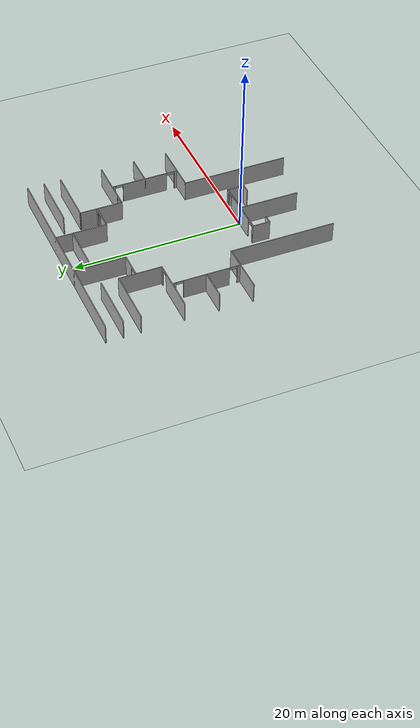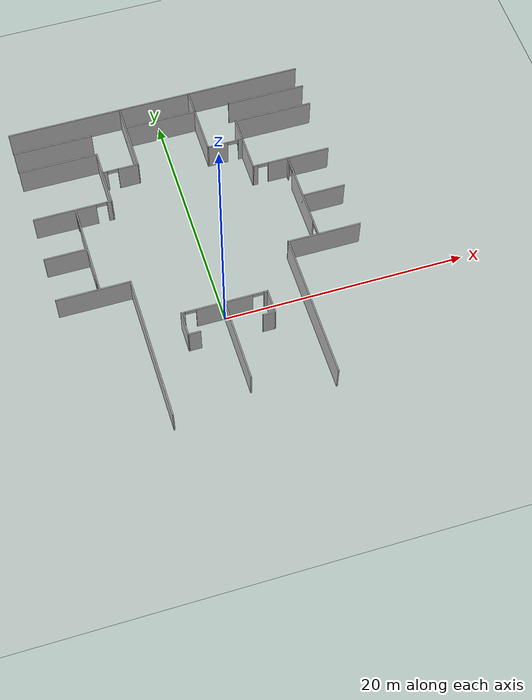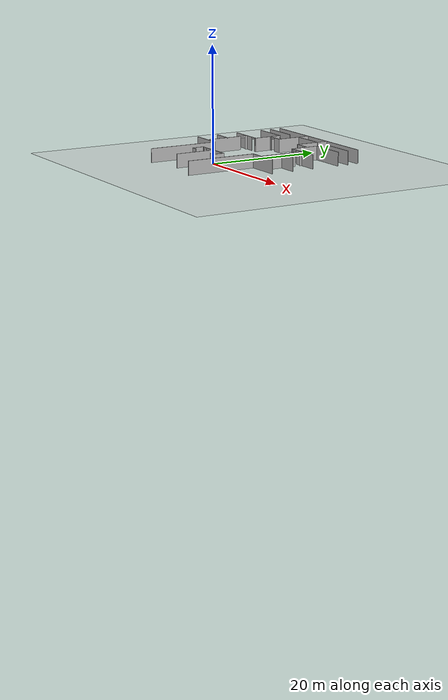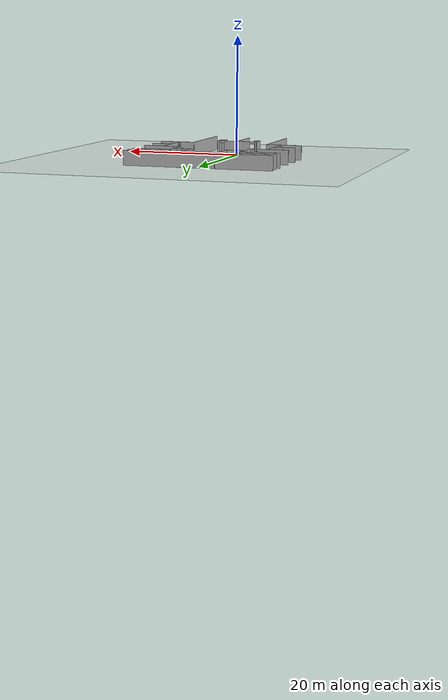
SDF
<sdf version="1.6">
 <world name="world">
  <include><uri>model://sun</uri></include>
  <include><uri>model://ground_plane</uri><pose>0 0 -0.1 0 -0 0</pose></include>
  <model name="ext_wall2">
   <allow_auto_disable>false</allow_auto_disable>
   <static>true</static>
   <pose>0 21 1.2 0 0 0</pose>
   <static>true</static>
   <link name="ext_wall2_link">
    <collision name="ext_wall2_collision"><geometry><box><size>25.1 0.1 2.4</size></box></geometry></collision>
    <visual name="ext_wall2_visual"><geometry><box><size>25.1 0.1 2.4</size></box></geometry></visual>
   </link>
  </model>
  <model name="wall1">
   <allow_auto_disable>false</allow_auto_disable>
   <static>true</static>
   <pose>0 0 1.2 0 0 0</pose>
   <static>true</static>
   <link name="wall1_link">
    <collision name="wall1_collision"><geometry><box><size>4.6 0.1 2.4</size></box></geometry></collision>
    <visual name="wall1_visual"><geometry><box><size>4.6 0.1 2.4</size></box></geometry></visual>
   </link>
  </model>
  <model name="wall2">
   <allow_auto_disable>false</allow_auto_disable>
   <static>true</static>
   <pose>3.35 0 1.2 0 0 0</pose>
   <static>true</static>
   <link name="wall2_link">
    <collision name="wall2_collision"><geometry><box><size>0.3 0.1 2.4</size></box></geometry></collision>
    <visual name="wawall3_ll2_visual"><geometry><box><size>0.3 0.1 2.4</size></box></geometry></visual>
   </link>
  </model>
  <model name="wall3">
   <allow_auto_disable>false</allow_auto_disable>
   <static>true</static>
   <pose>-3.35 0 1.2 0 0 0</pose>
   <static>true</static>
   <link name="wall3_link">
    <collision name="wall3_collision"><geometry><box><size>0.3 0.1 2.4</size></box></geometry></collision>
    <visual name="wall3_visual"><geometry><box><size>0.3 0.1 2.4</size></box></geometry></visual>
   </link>
  </model>
  <model name="wall4">
   <allow_auto_disable>false</allow_auto_disable>
   <static>true</static>
   <pose>3.5 -1 1.2 0 0 0</pose>
   <static>true</static>
   <link name="wall4_link">
    <collision name="wall4_collision"><geometry><box><size>0.1 2.1 2.4</size></box></geometry></collision>
    <visual name="wall4_visual"><geometry><box><size>0.1 2.1 2.4</size></box></geometry></visual>
   </link>
  </model>
  <model name="wall5">
   <allow_auto_disable>false</allow_auto_disable>
   <static>true</static>
   <pose>-3.5 -1 1.2 0 0 0</pose>
   <static>true</static>
   <link name="wall5_link">
    <collision name="wall5_collision"><geometry><box><size>0.1 2.1 2.4</size></box></geometry></collision>
    <visual name="wall5_visual"><geometry><box><size>0.1 2.1 2.4</size></box></geometry></visual>
   </link>
  </model>
  <model name="wall6">
   <allow_auto_disable>false</allow_auto_disable>
   <static>true</static>
   <pose>3 -2 1.2 0 0 0</pose>
   <static>true</static>
   <link name="wall6_link">
    <collision name="wall6_collision"><geometry><box><size>1 0.1 2.4</size></box></geometry></collision>
    <visual name="wall6_visual"><geometry><box><size>1 0.1 2.4</size></box></geometry></visual>
   </link>
  </model>
  <model name="wall7">
   <allow_auto_disable>false</allow_auto_disable>
   <static>true</static>
   <pose>-3 -2 1.2 0 0 0</pose>
   <static>true</static>
   <link name="wall7_link">
    <collision name="wall7_collision"><geometry><box><size>1 0.1 2.4</size></box></geometry></collision>
    <visual name="wall7_visual"><geometry><box><size>1 0.1 2.4</size></box></geometry></visual>
   </link>
  </model>
  <model name="wall15">
   <allow_auto_disable>false</allow_auto_disable>
   <static>true</static>
   <pose>0 -3.5 1.2 0 0 0</pose>
   <static>true</static>
   <link name="wall15_link">
    <collision name="wall15_collision"><geometry><box><size>0.1 7.1 2.4</size></box></geometry></collision>
    <visual name="wall15_visual"><geometry><box><size>0.1 7.1 2.4</size></box></geometry></visual>
   </link>
  </model>
  <model name="wall30">
   <allow_auto_disable>false</allow_auto_disable>
   <static>true</static>
   <pose>3.85 15 1.2 0 0 0</pose>
   <static>true</static>
   <link name="wall30_link">
    <collision name="wall30_collision"><geometry><box><size>1.7 0.1 2.4</size></box></geometry></collision>
    <visual name="wall30_visual"><geometry><box><size>1.7 0.1 2.4</size></box></geometry></visual>
   </link>
  </model>
  <model name="wall31">
   <allow_auto_disable>false</allow_auto_disable>
   <static>true</static>
   <pose>5.8 15 1.2 0 0 0</pose>
   <static>true</static>
   <link name="wall31_link">
    <collision name="wall31_collision"><geometry><box><size>0.4 0.1 2.4</size></box></geometry></collision>
    <visual name="wall31_visual"><geometry><box><size>0.4 0.1 2.4</size></box></geometry></visual>
   </link>
  </model>
  <model name="wall32">
   <allow_auto_disable>false</allow_auto_disable>
   <static>true</static>
   <pose>-3.85 15 1.2 0 0 0</pose>
   <static>true</static>
   <link name="wall32_link">
    <collision name="wall32_collision"><geometry><box><size>1.7 0.1 2.4</size></box></geometry></collision>
    <visual name="wall32_visual"><geometry><box><size>1.7 0.1 2.4</size></box></geometry></visual>
   </link>
  </model>
  <model name="wall33">
   <allow_auto_disable>false</allow_auto_disable>
   <static>true</static>
   <pose>-5.8 15 1.2 0 0 0</pose>
   <static>true</static>
   <link name="wall33_link">
    <collision name="wall33_collision"><geometry><box><size>0.4 0.1 2.4</size></box></geometry></collision>
    <visual name="wall33_visual"><geometry><box><size>0.4 0.1 2.4</size></box></geometry></visual>
   </link>
  </model>
  <model name="wall34">
   <allow_auto_disable>false</allow_auto_disable>
   <static>true</static>
   <pose>-3 18 1.2 0 0 0</pose>
   <static>true</static>
   <link name="wall34_link">
    <collision name="wall34_collision"><geometry><box><size>0.1 6.1 2.4</size></box></geometry></collision>
    <visual name="wall34_visual"><geometry><box><size>0.1 6.1 2.4</size></box></geometry></visual>
   </link>
  </model>
  <model name="wall35">
   <allow_auto_disable>false</allow_auto_disable>
   <static>true</static>
   <pose>3 18 1.2 0 0 0</pose>
   <static>true</static>
   <link name="wall35_link">
    <collision name="wall35_collision"><geometry><box><size>0.1 6.1 2.4</size></box></geometry></collision>
    <visual name="wall35_visual"><geometry><box><size>0.1 6.1 2.4</size></box></geometry></visual>
   </link>
  </model>
  <model name="wall36">
   <allow_auto_disable>false</allow_auto_disable>
   <static>true</static>
   <pose>0 19 1.2 0 0 0</pose>
   <static>true</static>
   <link name="wall36_link">
    <collision name="wall36_collision"><geometry><box><size>6.1 0.1 2.4</size></box></geometry></collision>
    <visual name="wall36_visual"><geometry><box><size>6.1 0.1 2.4</size></box></geometry></visual>
   </link>
  </model>
  <model name="wall37">
   <allow_auto_disable>false</allow_auto_disable>
   <static>true</static>
   <pose>-9.25 19 1.2 0 0 0</pose>
   <static>true</static>
   <link name="wall37_link">
    <collision name="wall37_collision"><geometry><box><size>6.6 0.1 2.4</size></box></geometry></collision>
    <visual name="wall37_visual"><geometry><box><size>6.6 0.1 2.4</size></box></geometry></visual>
   </link>
  </model>
  <model name="wall38">
   <allow_auto_disable>false</allow_auto_disable>
   <static>true</static>
   <pose>-9.25 17 1.2 0 0 0</pose>
   <static>true</static>
   <link name="wall38_link">
    <collision name="wall38_collision"><geometry><box><size>6.6 0.1 2.4</size></box></geometry></collision>
    <visual name="wall38_visual"><geometry><box><size>6.6 0.1 2.4</size></box></geometry></visual>
   </link>
  </model>
  <model name="wall39">
   <allow_auto_disable>false</allow_auto_disable>
   <static>true</static>
   <pose>9.25 19 1.2 0 0 0</pose>
   <static>true</static>
   <link name="wall39_link">
    <collision name="wall39_collision"><geometry><box><size>6.6 0.1 2.4</size></box></geometry></collision>
    <visual name="wall39_visual"><geometry><box><size>6.6 0.1 2.4</size></box></geometry></visual>
   </link>
  </model>
  <model name="wall40">
   <allow_auto_disable>false</allow_auto_disable>
   <static>true</static>
   <pose>9.25 17 1.2 0 0 0</pose>
   <static>true</static>
   <link name="wall40_link">
    <collision name="wall40_collision"><geometry><box><size>6.6 0.1 2.4</size></box></geometry></collision>
    <visual name="wall40_visual"><geometry><box><size>6.6 0.1 2.4</size></box></geometry></visual>
   </link>
  </model>
  <model name="wall41">
   <allow_auto_disable>false</allow_auto_disable>
   <static>true</static>
   <pose>-6 14.5 1.2 0 0 0</pose>
   <static>true</static>
   <link name="wall41_link">
    <collision name="wall41_collision"><geometry><box><size>0.1 5.1 2.4</size></box></geometry></collision>
    <visual name="wall41_visual"><geometry><box><size>0.1 5.1 2.4</size></box></geometry></visual>
   </link>
  </model>
  <model name="wall42">
   <allow_auto_disable>false</allow_auto_disable>
   <static>true</static>
   <pose>6 14.5 1.2 0 0 0</pose>
   <static>true</static>
   <link name="wall42_link">
    <collision name="wall42_collision"><geometry><box><size>0.1 5.1 2.4</size></box></geometry></collision>
    <visual name="wall42_visual"><geometry><box><size>0.1 5.1 2.4</size></box></geometry></visual>
   </link>
  </model>
  <model name="wall43">
   <allow_auto_disable>false</allow_auto_disable>
   <static>true</static>
   <pose>-6.2 12 1.2 0 0 0</pose>
   <static>true</static>
   <link name="wall43_link">
    <collision name="wall43_collision"><geometry><box><size>0.4 0.1 2.4</size></box></geometry></collision>
    <visual name="wall43_visual"><geometry><box><size>0.4 0.1 2.4</size></box></geometry></visual>
   </link>
  </model>
  <model name="wall44">
   <allow_auto_disable>false</allow_auto_disable>
   <static>true</static>
   <pose>-9.9 12 1.2 0 0 0</pose>
   <static>true</static>
   <link name="wall44_link">
    <collision name="wall44_collision"><geometry><box><size>5.2 0.1 2.4</size></box></geometry></collision>
    <visual name="wall44_visual"><geometry><box><size>5.2 0.1 2.4</size></box></geometry></visual>
   </link>
  </model>
  <model name="wall45">
   <allow_auto_disable>false</allow_auto_disable>
   <static>true</static>
   <pose>6.2 12 1.2 0 0 0</pose>
   <static>true</static>
   <link name="wall45_link">
    <collision name="wall45_collision"><geometry><box><size>0.4 0.1 2.4</size></box></geometry></collision>
    <visual name="wall45_visual"><geometry><box><size>0.4 0.1 2.4</size></box></geometry></visual>
   </link>
  </model>
  <model name="wall46">
   <allow_auto_disable>false</allow_auto_disable>
   <static>true</static>
   <pose>9.9 12 1.2 0 0 0</pose>
   <static>true</static>
   <link name="wall46_link">
    <collision name="wall46_collision"><geometry><box><size>5.2 0.1 2.4</size></box></geometry></collision>
    <visual name="wall46_visual"><geometry><box><size>5.2 0.1 2.4</size></box></geometry></visual>
   </link>
  </model>
  <model name="wall47">
   <allow_auto_disable>false</allow_auto_disable>
   <static>true</static>
   <pose>-9 11.8 1.2 0 0 0</pose>
   <static>true</static>
   <link name="wall47_link">
    <collision name="wall47_collision"><geometry><box><size>0.1 0.4 2.4</size></box></geometry></collision>
    <visual name="wall47_visual"><geometry><box><size>0.1 0.4 2.4</size></box></geometry></visual>
   </link>
  </model>
  <model name="wall48">
   <allow_auto_disable>false</allow_auto_disable>
   <static>true</static>
   <pose>-9 8 1.2 0 0 0</pose>
   <static>true</static>
   <link name="wall48_link">
    <collision name="wall48_collision"><geometry><box><size>0.1 5.4 2.4</size></box></geometry></collision>
    <visual name="wall48_visual"><geometry><box><size>0.1 5.4 2.4</size></box></geometry></visual>
   </link>
  </model>
  <model name="wall49">
   <allow_auto_disable>false</allow_auto_disable>
   <static>true</static>
   <pose>-9 4.2 1.2 0 0 0</pose>
   <static>true</static>
   <link name="wall49_link">
    <collision name="wall49_collision"><geometry><box><size>0.1 0.4 2.4</size></box></geometry></collision>
    <visual name="wall49_visual"><geometry><box><size>0.1 0.4 2.4</size></box></geometry></visual>
   </link>
  </model>
  <model name="wall50">
   <allow_auto_disable>false</allow_auto_disable>
   <static>true</static>
   <pose>9 11.8 1.2 0 0 0</pose>
   <static>true</static>
   <link name="wall50_link">
    <collision name="wall50_collision"><geometry><box><size>0.1 0.4 2.4</size></box></geometry></collision>
    <visual name="wall50_visual"><geometry><box><size>0.1 0.4 2.4</size></box></geometry></visual>
   </link>
  </model>
  <model name="wall51">
   <allow_auto_disable>false</allow_auto_disable>
   <static>true</static>
   <pose>9 8 1.2 0 0 0</pose>
   <static>true</static>
   <link name="wall51_link">
    <collision name="wall51_collision"><geometry><box><size>0.1 5.4 2.4</size></box></geometry></collision>
    <visual name="wall51_visual"><geometry><box><size>0.1 5.4 2.4</size></box></geometry></visual>
   </link>
  </model>
  <model name="wall52">
   <allow_auto_disable>false</allow_auto_disable>
   <static>true</static>
   <pose>9 4.2 1.2 0 0 0</pose>
   <static>true</static>
   <link name="wall52_link">
    <collision name="wall52_collision"><geometry><box><size>0.1 0.4 2.4</size></box></geometry></collision>
    <visual name="wall52_visual"><geometry><box><size>0.1 0.4 2.4</size></box></geometry></visual>
   </link>
  </model>
  <model name="wall53">
   <allow_auto_disable>false</allow_auto_disable>
   <static>true</static>
   <pose>-10.75 8 1.2 0 0 0</pose>
   <static>true</static>
   <link name="wall53_link">
    <collision name="wall53_collision"><geometry><box><size>3.6 0.1 2.4</size></box></geometry></collision>
    <visual name="wall53_visual"><geometry><box><size>3.6 0.1 2.4</size></box></geometry></visual>
   </link>
  </model>
  <model name="wall54">
   <allow_auto_disable>false</allow_auto_disable>
   <static>true</static>
   <pose>10.75 8 1.2 0 0 0</pose>
   <static>true</static>
   <link name="wall54_link">
    <collision name="wall54_collision"><geometry><box><size>3.6 0.1 2.4</size></box></geometry></collision>
    <visual name="wall54_visual"><geometry><box><size>3.6 0.1 2.4</size></box></geometry></visual>
   </link>
  </model>
  <model name="wall55">
   <allow_auto_disable>false</allow_auto_disable>
   <static>true</static>
   <pose>-9.5 4 1.2 0 0 0</pose>
   <static>true</static>
   <link name="wall55_link">
    <collision name="wall55_collision"><geometry><box><size>6.1 0.1 2.4</size></box></geometry></collision>
    <visual name="wall55_visual"><geometry><box><size>6.1 0.1 2.4</size></box></geometry></visual>
   </link>
  </model>
  <model name="wall56">
   <allow_auto_disable>false</allow_auto_disable>
   <static>true</static>
   <pose>9.5 4 1.2 0 0 0</pose>
   <static>true</static>
   <link name="wall56_link">
    <collision name="wall56_collision"><geometry><box><size>6.1 0.1 2.4</size></box></geometry></collision>
    <visual name="wall56_visual"><geometry><box><size>6.1 0.1 2.4</size></box></geometry></visual>
   </link>
  </model>
  <model name="wall57">
   <allow_auto_disable>false</allow_auto_disable>
   <static>true</static>
   <pose>-6.5 -2.2 1.2 0 0 0</pose>
   <static>true</static>
   <link name="wall57_link">
    <collision name="wall57_collision"><geometry><box><size>0.1 12.5 2.4</size></box></geometry></collision>
    <visual name="wall57_visual"><geometry><box><size>0.1 12.5 2.4</size></box></geometry></visual>
   </link>
  </model>
  <model name="wall58">
   <allow_auto_disable>false</allow_auto_disable>
   <static>true</static>
   <pose>6.5 -2.2 1.2 0 0 0</pose>
   <static>true</static>
   <link name="wall58_link">
    <collision name="wall58_collision"><geometry><box><size>0.1 12.5 2.4</size></box></geometry></collision>
    <visual name="wall58_visual"><geometry><box><size>0.1 12.5 2.4</size></box></geometry></visual>
   </link>
  </model>
  <model name="arch1">
   <allow_auto_disable>false</allow_auto_disable>
   <static>true</static>
   <pose>2.75 0 2.25 0 0 0</pose>
   <static>true</static>
   <link name="arch1_link">
    <collision name="arch1_collision"><geometry><box><size>0.9 0.1 0.3</size></box></geometry></collision>
    <visual name="arch1_visual"><geometry><box><size>0.9 0.1 0.3</size></box></geometry></visual>
   </link>
  </model>
  <model name="arch2">
   <allow_auto_disable>false</allow_auto_disable>
   <static>true</static>
   <pose>-2.75 0 2.25 0 0 0</pose>
   <static>true</static>
   <link name="arch2_link">
    <collision name="arch2_collision"><geometry><box><size>0.9 0.1 0.3</size></box></geometry></collision>
    <visual name="arch2_visual"><geometry><box><size>0.9 0.1 0.3</size></box></geometry></visual>
   </link>
  </model>
  <model name="arch7">
   <allow_auto_disable>false</allow_auto_disable>
   <static>true</static>
   <pose>5.15 15 2.25 0 0 0</pose>
   <static>true</static>
   <link name="arch7_link">
    <collision name="arch7_collision"><geometry><box><size>0.9 0.1 0.3</size></box></geometry></collision>
    <visual name="arch7_visual"><geometry><box><size>0.9 0.1 0.3</size></box></geometry></visual>
   </link>
  </model>
  <model name="arch8">
   <allow_auto_disable>false</allow_auto_disable>
   <static>true</static>
   <pose>-5.15 15 2.25 0 0 0</pose>
   <static>true</static>
   <link name="arch8_link">
    <collision name="arch8_collision"><geometry><box><size>0.9 0.1 0.3</size></box></geometry></collision>
    <visual name="arch8_visual"><geometry><box><size>0.9 0.1 0.3</size></box></geometry></visual>
   </link>
  </model>
  <model name="arch9">
   <allow_auto_disable>false</allow_auto_disable>
   <static>true</static>
   <pose>-6.85 12 2.25 0 0 0</pose>
   <static>true</static>
   <link name="arch9_link">
    <collision name="arch9_collision"><geometry><box><size>0.9 0.1 0.3</size></box></geometry></collision>
    <visual name="arch9_visual"><geometry><box><size>0.9 0.1 0.3</size></box></geometry></visual>
   </link>
  </model>
  <model name="arch10">
   <allow_auto_disable>false</allow_auto_disable>
   <static>true</static>
   <pose>6.85 12 2.25 0 0 0</pose>
   <static>true</static>
   <link name="arch10_link">
    <collision name="arch10_collision"><geometry><box><size>0.9 0.1 0.3</size></box></geometry></collision>
    <visual name="arch10_visual"><geometry><box><size>0.9 0.1 0.3</size></box></geometry></visual>
   </link>
  </model>
  <model name="arch11">
   <allow_auto_disable>false</allow_auto_disable>
   <static>true</static>
   <pose>-9 11.15 2.25 0 0 0</pose>
   <static>true</static>
   <link name="arch11_link">
    <collision name="arch11_collision"><geometry><box><size>0.1 0.9 0.3</size></box></geometry></collision>
    <visual name="arch11_visual"><geometry><box><size>0.1 0.9 0.3</size></box></geometry></visual>
   </link>
  </model>
  <model name="arch12">
   <allow_auto_disable>false</allow_auto_disable>
   <static>true</static>
   <pose>-9 4.85 2.25 0 0 0</pose>
   <static>true</static>
   <link name="arch12_link">
    <collision name="arch12_collision"><geometry><box><size>0.1 0.9 0.3</size></box></geometry></collision>
    <visual name="arch12_visual"><geometry><box><size>0.1 0.9 0.3</size></box></geometry></visual>
   </link>
  </model>
  <model name="arch13">
   <allow_auto_disable>false</allow_auto_disable>
   <static>true</static>
   <pose>9 11.15 2.25 0 0 0</pose>
   <static>true</static>
   <link name="arch13_link">
    <collision name="arch13_collision"><geometry><box><size>0.1 0.9 0.3</size></box></geometry></collision>
    <visual name="arch13_visual"><geometry><box><size>0.1 0.9 0.3</size></box></geometry></visual>
   </link>
  </model>
  <model name="arch14">
   <allow_auto_disable>false</allow_auto_disable>
   <static>true</static>
   <pose>9 4.85 2.25 0 0 0</pose>
   <static>true</static>
   <link name="arch14_link">
    <collision name="arch14_collision"><geometry><box><size>0.1 0.9 0.3</size></box></geometry></collision>
    <visual name="arch14_visual"><geometry><box><size>0.1 0.9 0.3</size></box></geometry></visual>
   </link>
  </model>
  <model name="actor1_collision_model">
   <allow_auto_disable>false</allow_auto_disable>
   <pose>0 0 -100 0 0 0</pose>
   <static>true</static>
   <link name="link">
    <collision name="link">
     <pose>0 -0.18 0.05 0 0 0</pose>
     <geometry><box><size>0.60 1.40 0.44</size></box></geometry>
    </collision>
    <visual name="link_visual">
     <pose>0 0 0 -1.5707 -1.5707 0</pose>
     <geometry><box><size>0.01 0.01 0.01</size></box></geometry>
     <plugin name="actor1_forces_visualization" filename="libVisualizeForcesPlugin.so">
      <node_name>Actor1Node_Visual</node_name>
      <topic_name>/forces/actor1</topic_name>
      <headed>true</headed>
     </plugin>
    </visual>
   </link>
  </model>
 </world>
</sdf>
